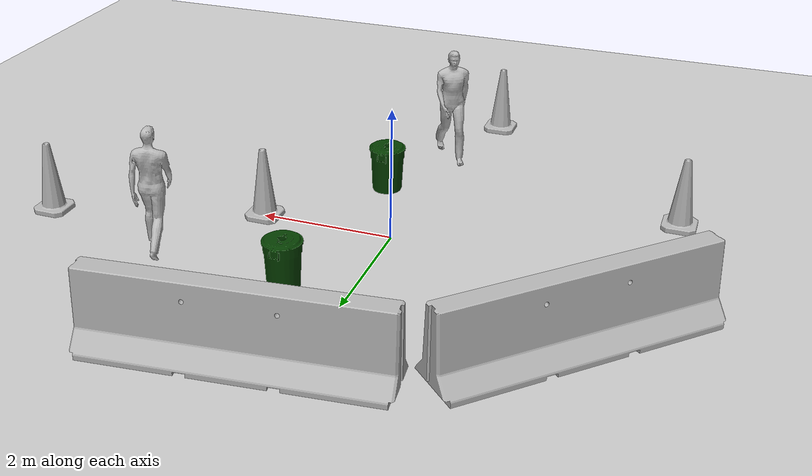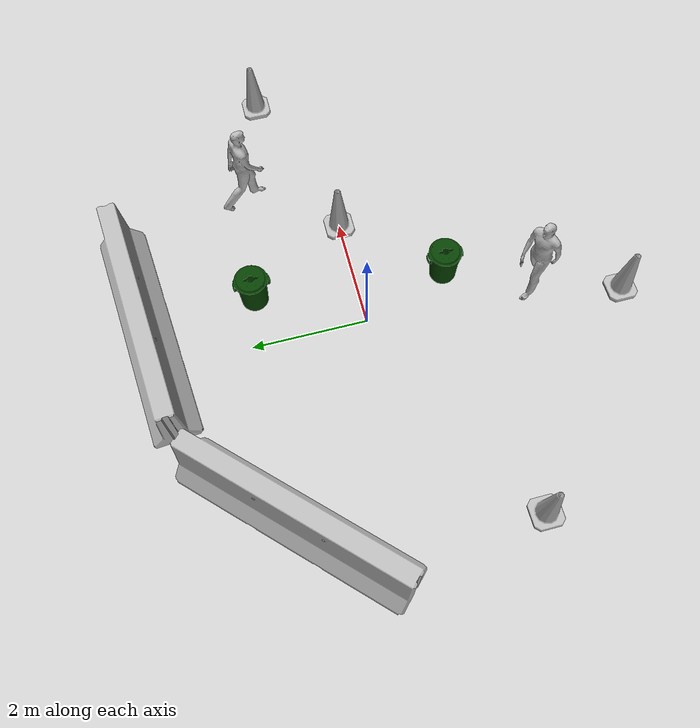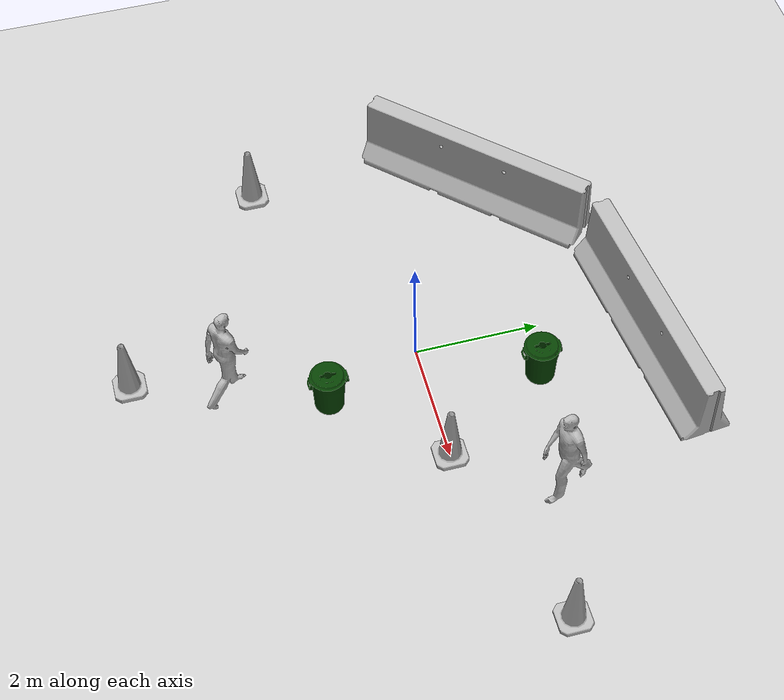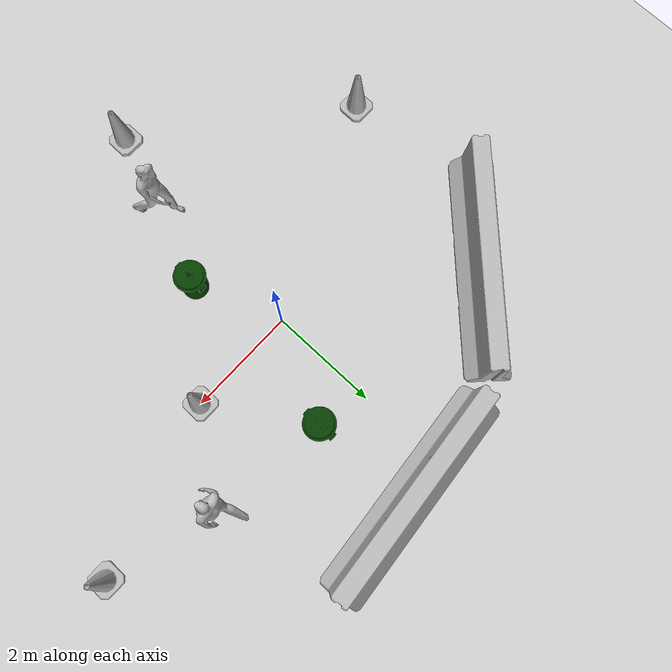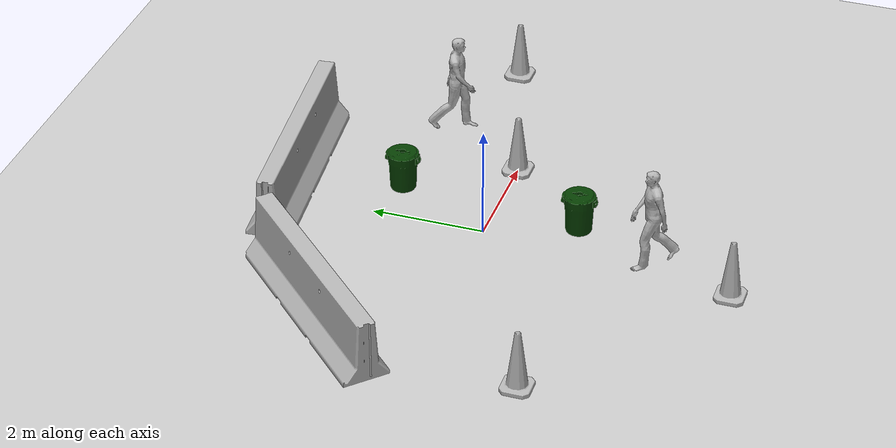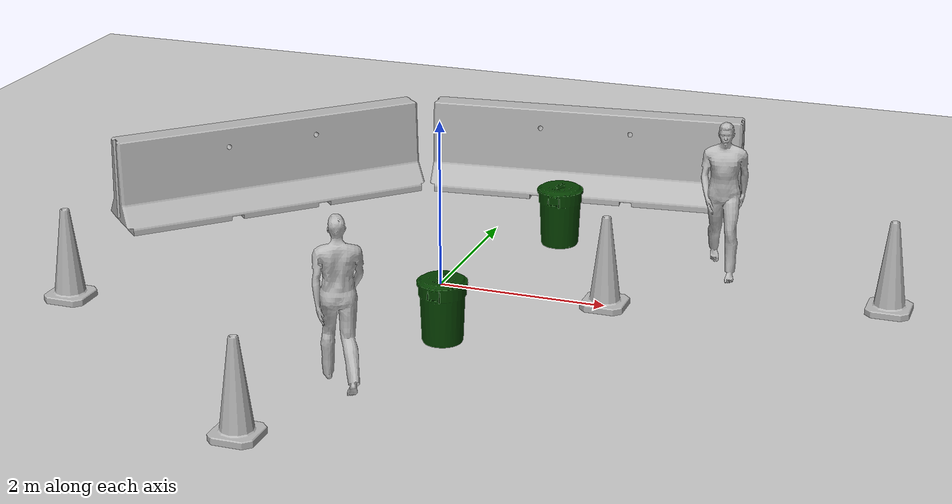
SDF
<sdf version="1.4">
 <world name="default">
  <light name="sun" type="directional">
   <pose>0 0 10 0 -0 0</pose>
   <diffuse>0.8 0.8 0.8 1</diffuse>
   <specular>0.2 0.2 0.2 1</specular>
   <attenuation>
    <range>1000</range>
    <constant>0.9</constant>
    <linear>0.01</linear>
    <quadratic>0.001</quadratic>
   </attenuation>
   <direction>-0.5 0.1 -0.9</direction>
  </light>
  <model name="ground_plane">
   <static>1</static>
   <link name="link">
    <collision name="collision">
     <geometry><plane><normal>0 0 1</normal><size>100 100</size></plane></geometry>
     <surface><friction><ode><mu>100</mu><mu2>50</mu2></ode></friction></surface>
    </collision>
    <visual name="visual">
     <cast_shadows>0</cast_shadows>
     <geometry><plane><normal>0 0 1</normal><size>100 100</size></plane></geometry>
     <material>
      <script><uri>file://media/materials/scripts/gazebo.material</uri><name>Gazebo/Grey</name></script>
     </material>
    </visual>
    <velocity_decay><linear>0</linear><angular>0</angular></velocity_decay>
   </link>
  </model>
  <physics type="ode">
   <max_step_size>0.01</max_step_size>
   <real_time_factor>1</real_time_factor>
   <real_time_update_rate>100</real_time_update_rate>
   <gravity>0 0 -9.8</gravity>
  </physics>
  <scene><ambient>0.4 0.4 0.4 1</ambient><background>0.7 0.7 0.7 1</background><shadows>1</shadows></scene>
  <spherical_coordinates>
   <surface_model>EARTH_WGS84</surface_model>
   <latitude_deg>0</latitude_deg>
   <longitude_deg>0</longitude_deg>
   <elevation>0</elevation>
   <heading_deg>0</heading_deg>
  </spherical_coordinates>
  <model name="jersey_barrier">
   <static>1</static>
   <link name="link">
    <visual name="visual">
     <geometry><mesh><uri>model://jersey_barrier/meshes/jersey_barrier.dae</uri></mesh></geometry>
    </visual>
    <collision name="upright">
     <pose>0 0 0.5715 0 -0 0</pose>
     <geometry><box><size>4.06542 0.3063 1.143</size></box></geometry>
    </collision>
    <collision name="base">
     <pose>0 0 0.032258 0 -0 0</pose>
     <geometry><box><size>4.06542 0.8107 0.064516</size></box></geometry>
    </collision>
    <collision name="base2">
     <pose>0 0 0.1 0 -0 0</pose>
     <geometry><box><size>4.06542 0.65 0.1</size></box></geometry>
    </collision>
    <collision name="base3">
     <pose>0 0 0.2 0 -0 0</pose>
     <geometry><box><size>4.06542 0.5 0.1</size></box></geometry>
    </collision>
    <collision name="left-angle">
     <pose>0 -0.224 0.2401 0.9 -0 0</pose>
     <geometry><box><size>4.06542 0.5 0.064516</size></box></geometry>
    </collision>
    <collision name="right-angle">
     <pose>0 0.224 0.2401 -0.9 0 0</pose>
     <geometry><box><size>4.06542 0.5 0.064516</size></box></geometry>
    </collision>
    <velocity_decay><linear>0</linear><angular>0</angular></velocity_decay>
   </link>
   <pose>-3.06915 1.89485 0 0 -0 0.79056</pose>
  </model>
  <model name="jersey_barrier_0">
   <static>1</static>
   <link name="link">
    <visual name="visual">
     <geometry><mesh><uri>model://jersey_barrier/meshes/jersey_barrier.dae</uri></mesh></geometry>
    </visual>
    <collision name="upright">
     <pose>0 0 0.5715 0 -0 0</pose>
     <geometry><box><size>4.06542 0.3063 1.143</size></box></geometry>
    </collision>
    <collision name="base">
     <pose>0 0 0.032258 0 -0 0</pose>
     <geometry><box><size>4.06542 0.8107 0.064516</size></box></geometry>
    </collision>
    <collision name="base2">
     <pose>0 0 0.1 0 -0 0</pose>
     <geometry><box><size>4.06542 0.65 0.1</size></box></geometry>
    </collision>
    <collision name="base3">
     <pose>0 0 0.2 0 -0 0</pose>
     <geometry><box><size>4.06542 0.5 0.1</size></box></geometry>
    </collision>
    <collision name="left-angle">
     <pose>0 -0.224 0.2401 0.9 -0 0</pose>
     <geometry><box><size>4.06542 0.5 0.064516</size></box></geometry>
    </collision>
    <collision name="right-angle">
     <pose>0 0.224 0.2401 -0.9 0 0</pose>
     <geometry><box><size>4.06542 0.5 0.064516</size></box></geometry>
    </collision>
    <velocity_decay><linear>0</linear><angular>0</angular></velocity_decay>
   </link>
   <pose>0.681006 3.65238 0 0 0 -3.03835</pose>
  </model>
  <model name="person_walking">
   <link name="link">
    <inertial>
     <pose>0 0 0.95 0 -0 0</pose>
     <mass>80</mass>
     <inertia><ixx>27.82</ixx><ixy>0</ixy><ixz>0</ixz><iyy>24.88</iyy><iyz>0</iyz><izz>4.57</izz></inertia>
    </inertial>
    <collision name="bottom">
     <pose>0 0 0.01 0 -0 0</pose>
     <geometry><box><size>0.35 0.75 0.02</size></box></geometry>
    </collision>
    <collision name="person">
     <pose>0 0 -0.02 0 -0 0</pose>
     <geometry><mesh><uri>model://person_walking/meshes/walking.dae</uri></mesh></geometry>
    </collision>
    <visual name="visual">
     <pose>0 0 -0.02 0 -0 0</pose>
     <geometry><mesh><uri>model://person_walking/meshes/walking.dae</uri></mesh></geometry>
    </visual>
    <velocity_decay><linear>0</linear><angular>0</angular></velocity_decay>
   </link>
   <pose>-0.000115 -3.00001 0 2.11758e-22 -2e-06 -2.65492</pose>
   <static>0</static>
  </model>
  <model name="person_walking_0">
   <link name="link">
    <inertial>
     <pose>0 0 0.95 0 -0 0</pose>
     <mass>80</mass>
     <inertia><ixx>27.82</ixx><ixy>0</ixy><ixz>0</ixz><iyy>24.88</iyy><iyz>0</iyz><izz>4.57</izz></inertia>
    </inertial>
    <collision name="bottom">
     <pose>0 0 0.01 0 -0 0</pose>
     <geometry><box><size>0.35 0.75 0.02</size></box></geometry>
    </collision>
    <collision name="person">
     <pose>0 0 -0.02 0 -0 0</pose>
     <geometry><mesh><uri>model://person_walking/meshes/walking.dae</uri></mesh></geometry>
    </collision>
    <visual name="visual">
     <pose>0 0 -0.02 0 -0 0</pose>
     <geometry><mesh><uri>model://person_walking/meshes/walking.dae</uri></mesh></geometry>
    </visual>
    <velocity_decay><linear>0</linear><angular>0</angular></velocity_decay>
   </link>
   <pose>3.00011 1.5088 -0.000867 -1.5e-05 4.7e-05 0.188163</pose>
   <static>0</static>
  </model>
  <model name="coke_can">
   <link name="link">
    <inertial>
     <pose>-0.01 -0.012 0.15 0 -0 0</pose>
     <mass>0.39</mass>
     <inertia><ixx>0.00058</ixx><ixy>0</ixy><ixz>0</ixz><iyy>0.00058</iyy><iyz>0</iyz><izz>0.00019</izz></inertia>
    </inertial>
    <collision name="collision">
     <pose>0 0 -0.46 0 -0 0</pose>
     <geometry><mesh><uri>model://coke_can/meshes/coke_can.dae</uri></mesh></geometry>
     <surface>
      <friction><ode><mu>1</mu><mu2>1</mu2></ode></friction>
      <contact><ode><kp>1e+07</kp><kd>1</kd><min_depth>0.001</min_depth><max_vel>0.1</max_vel></ode></contact>
     </surface>
    </collision>
    <visual name="visual">
     <pose>0 0 -0.46 0 -0 0</pose>
     <geometry><mesh><uri>model://coke_can/meshes/coke_can.dae</uri></mesh></geometry>
    </visual>
    <velocity_decay><linear>0</linear><angular>0</angular></velocity_decay>
   </link>
   <pose>-0.99985 0.999622 -0.004949 -0.059739 0.006023 -0.009608</pose>
   <static>0</static>
  </model>
  <model name="coke_can_0">
   <link name="link">
    <inertial>
     <pose>-0.01 -0.012 0.15 0 -0 0</pose>
     <mass>0.39</mass>
     <inertia><ixx>0.00058</ixx><ixy>0</ixy><ixz>0</ixz><iyy>0.00058</iyy><iyz>0</iyz><izz>0.00019</izz></inertia>
    </inertial>
    <collision name="collision">
     <pose>0 0 -0.46 0 -0 0</pose>
     <geometry><mesh><uri>model://coke_can/meshes/coke_can.dae</uri></mesh></geometry>
     <surface>
      <friction><ode><mu>1</mu><mu2>1</mu2></ode></friction>
      <contact><ode><kp>1e+07</kp><kd>1</kd><min_depth>0.001</min_depth><max_vel>0.1</max_vel></ode></contact>
     </surface>
    </collision>
    <visual name="visual">
     <pose>0 0 -0.46 0 -0 0</pose>
     <geometry><mesh><uri>model://coke_can/meshes/coke_can.dae</uri></mesh></geometry>
    </visual>
    <velocity_decay><linear>0</linear><angular>0</angular></velocity_decay>
   </link>
   <pose>2.41683 -3.14117 -0.004949 -0.059739 0.006023 -0.009608</pose>
   <static>0</static>
  </model>
  <model name="first_2015_trash_can">
   <link name="link">
    <inertial>
     <pose>0 0 0.3683 0 -0 0</pose>
     <mass>4.83076</mass>
     <inertia>
      <ixx>0.281534</ixx>
      <ixy>0</ixy>
      <ixz>0</ixz>
      <iyy>0.281534</iyy>
      <iyz>0</iyz>
      <izz>0.126223</izz>
     </inertia>
    </inertial>
    <visual name="visual">
     <geometry><mesh><uri>model://first_2015_trash_can/meshes/trash_can.dae</uri></mesh></geometry>
    </visual>
    <collision name="collision">
     <geometry><mesh><uri>model://first_2015_trash_can/meshes/trash_can.dae</uri></mesh></geometry>
    </collision>
    <velocity_decay><linear>0</linear><angular>0</angular></velocity_decay>
   </link>
   <pose>0.594629 -1.53224 -4.6e-05 -0.000271 -8.2e-05 -0.000722</pose>
   <static>0</static>
  </model>
  <model name="first_2015_trash_can_0">
   <link name="link">
    <inertial>
     <pose>0 0 0.3683 0 -0 0</pose>
     <mass>4.83076</mass>
     <inertia>
      <ixx>0.281534</ixx>
      <ixy>0</ixy>
      <ixz>0</ixz>
      <iyy>0.281534</iyy>
      <iyz>0</iyz>
      <izz>0.126223</izz>
     </inertia>
    </inertial>
    <visual name="visual">
     <geometry><mesh><uri>model://first_2015_trash_can/meshes/trash_can.dae</uri></mesh></geometry>
    </visual>
    <collision name="collision">
     <geometry><mesh><uri>model://first_2015_trash_can/meshes/trash_can.dae</uri></mesh></geometry>
    </collision>
    <velocity_decay><linear>0</linear><angular>0</angular></velocity_decay>
   </link>
   <pose>0.905648 1.77207 -4.6e-05 -0.000271 -8.2e-05 -0.000722</pose>
   <static>0</static>
  </model>
  <model name="Construction Cone">
   <link name="link">
    <collision name="collision">
     <geometry>
      <mesh><scale>10 10 10</scale><uri>model://construction_cone/meshes/construction_cone.dae</uri></mesh>
     </geometry>
    </collision>
    <visual name="visual">
     <geometry>
      <mesh><scale>10 10 10</scale><uri>model://construction_cone/meshes/construction_cone.dae</uri></mesh>
     </geometry>
    </visual>
    <velocity_decay><linear>0</linear><angular>0</angular></velocity_decay>
    <inertial>
     <inertia><ixx>1</ixx><ixy>0</ixy><ixz>0</ixz><iyy>1</iyy><iyz>0</iyz><izz>1</izz></inertia>
     <mass>1</mass>
    </inertial>
   </link>
   <pose>5.09144 0.923165 -0.000925 -0.000124 7.1e-05 -1e-06</pose>
   <static>0</static>
  </model>
  <model name="Construction Cone_0">
   <link name="link">
    <collision name="collision">
     <geometry>
      <mesh><scale>10 10 10</scale><uri>model://construction_cone/meshes/construction_cone.dae</uri></mesh>
     </geometry>
    </collision>
    <visual name="visual">
     <geometry>
      <mesh><scale>10 10 10</scale><uri>model://construction_cone/meshes/construction_cone.dae</uri></mesh>
     </geometry>
    </visual>
    <velocity_decay><linear>0</linear><angular>0</angular></velocity_decay>
    <inertial>
     <inertia><ixx>1</ixx><ixy>0</ixy><ixz>0</ixz><iyy>1</iyy><iyz>0</iyz><izz>1</izz></inertia>
     <mass>1</mass>
    </inertial>
   </link>
   <pose>-3.8849 -1.82072 -0.000925 -0.000124 7.1e-05 -1e-06</pose>
   <static>0</static>
  </model>
  <model name="Construction Cone_1">
   <link name="link">
    <collision name="collision">
     <geometry>
      <mesh><scale>10 10 10</scale><uri>model://construction_cone/meshes/construction_cone.dae</uri></mesh>
     </geometry>
    </collision>
    <visual name="visual">
     <geometry>
      <mesh><scale>10 10 10</scale><uri>model://construction_cone/meshes/construction_cone.dae</uri></mesh>
     </geometry>
    </visual>
    <velocity_decay><linear>0</linear><angular>0</angular></velocity_decay>
    <inertial>
     <inertia><ixx>1</ixx><ixy>0</ixy><ixz>0</ixz><iyy>1</iyy><iyz>0</iyz><izz>1</izz></inertia>
     <mass>1</mass>
    </inertial>
   </link>
   <pose>2 0 0 0 -0 0</pose>
   <static>0</static>
  </model>
  <model name="Construction Cone_2">
   <link name="link">
    <collision name="collision">
     <geometry>
      <mesh><scale>10 10 10</scale><uri>model://construction_cone/meshes/construction_cone.dae</uri></mesh>
     </geometry>
    </collision>
    <visual name="visual">
     <geometry>
      <mesh><scale>10 10 10</scale><uri>model://construction_cone/meshes/construction_cone.dae</uri></mesh>
     </geometry>
    </visual>
    <velocity_decay><linear>0</linear><angular>0</angular></velocity_decay>
    <inertial>
     <inertia><ixx>1</ixx><ixy>0</ixy><ixz>0</ixz><iyy>1</iyy><iyz>0</iyz><izz>1</izz></inertia>
     <mass>1</mass>
    </inertial>
   </link>
   <pose>-0.491807 -4.45721 0 0 -0 0</pose>
   <static>0</static>
  </model>
 </world>
</sdf>
